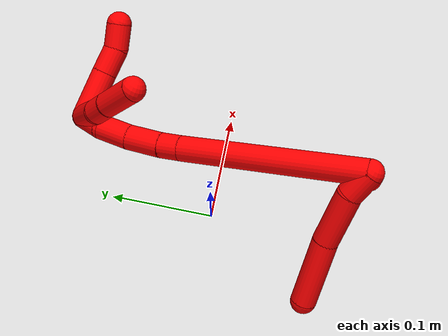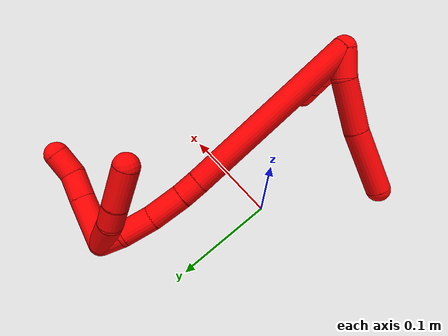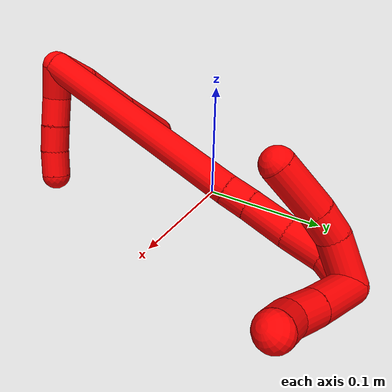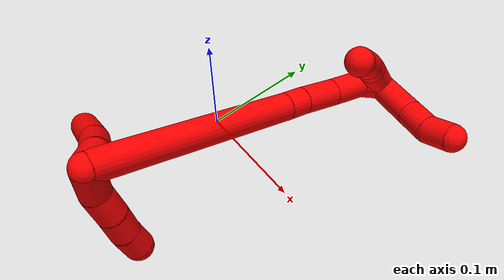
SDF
<sdf version="1.7">
 <world name="default">
  <model name="2">
   <static>0</static>
   <link name="2">
    <collision name="collision-cylinder-e_1_2_8">
     <pose>-0.000307 0.002155 -0.01395 -2.98833 -0.021716 0.280977</pose>
     <geometry><cylinder><radius>0.0125</radius><length>0.028238</length></cylinder></geometry>
     <surface>
      <friction><ode><mu>1.16</mu><mu2>1.16</mu2><slip1>0</slip1><slip2>0</slip2></ode></friction>
      <contact><ode><kp>1e+06</kp><kd>1</kd><max_vel>0</max_vel><min_depth>0.001</min_depth></ode></contact>
     </surface>
    </collision>
    <visual name="visual-cylinder-e_1_2_8">
     <pose>-0.000307 0.002155 -0.01395 -2.98833 -0.021716 0.280977</pose>
     <geometry><cylinder><radius>0.0125</radius><length>0.028238</length></cylinder></geometry>
     <material><ambient>1 0 0 1</ambient></material>
    </visual>
    <collision name="collision-cylinder-e_2_8_9">
     <pose>-0.002518 0.000692 -0.054473 3.00627 -0.070914 -0.964486</pose>
     <geometry><cylinder><radius>0.0125</radius><length>0.053771</length></cylinder></geometry>
     <surface>
      <friction><ode><mu>1.16</mu><mu2>1.16</mu2><slip1>0</slip1><slip2>0</slip2></ode></friction>
      <contact><ode><kp>1e+06</kp><kd>1</kd><max_vel>0</max_vel><min_depth>0.001</min_depth></ode></contact>
     </surface>
    </collision>
    <visual name="visual-cylinder-e_2_8_9">
     <pose>-0.002518 0.000692 -0.054473 3.00627 -0.070914 -0.964486</pose>
     <geometry><cylinder><radius>0.0125</radius><length>0.053771</length></cylinder></geometry>
     <material><ambient>1 0 0 1</ambient></material>
    </visual>
    <collision name="collision-cylinder-e_3_9_6">
     <pose>-0.010005 -0.00986 -0.113856 2.93331 -0.164933 -1.33821</pose>
     <geometry><cylinder><radius>0.0125</radius><length>0.067991</length></cylinder></geometry>
     <surface>
      <friction><ode><mu>1.16</mu><mu2>1.16</mu2><slip1>0</slip1><slip2>0</slip2></ode></friction>
      <contact><ode><kp>1e+06</kp><kd>1</kd><max_vel>0</max_vel><min_depth>0.001</min_depth></ode></contact>
     </surface>
    </collision>
    <visual name="visual-cylinder-e_3_9_6">
     <pose>-0.010005 -0.00986 -0.113856 2.93331 -0.164933 -1.33821</pose>
     <geometry><cylinder><radius>0.0125</radius><length>0.067991</length></cylinder></geometry>
     <material><ambient>1 0 0 1</ambient></material>
    </visual>
    <collision name="collision-cylinder-e_1_2_10">
     <pose>0.009445 -0.00713 -0.008101 2.41985 0.718955 1.56658</pose>
     <geometry><cylinder><radius>0.0125</radius><length>0.028683</length></cylinder></geometry>
     <surface>
      <friction><ode><mu>1.16</mu><mu2>1.16</mu2><slip1>0</slip1><slip2>0</slip2></ode></friction>
      <contact><ode><kp>1e+06</kp><kd>1</kd><max_vel>0</max_vel><min_depth>0.001</min_depth></ode></contact>
     </surface>
    </collision>
    <visual name="visual-cylinder-e_1_2_10">
     <pose>0.009445 -0.00713 -0.008101 2.41985 0.718955 1.56658</pose>
     <geometry><cylinder><radius>0.0125</radius><length>0.028683</length></cylinder></geometry>
     <material><ambient>1 0 0 1</ambient></material>
    </visual>
    <collision name="collision-cylinder-e_2_10_11">
     <pose>0.029631 -0.017987 -0.021894 2.56184 1.00615 2.14819</pose>
     <geometry><cylinder><radius>0.0125</radius><length>0.025427</length></cylinder></geometry>
     <surface>
      <friction><ode><mu>1.16</mu><mu2>1.16</mu2><slip1>0</slip1><slip2>0</slip2></ode></friction>
      <contact><ode><kp>1e+06</kp><kd>1</kd><max_vel>0</max_vel><min_depth>0.001</min_depth></ode></contact>
     </surface>
    </collision>
    <visual name="visual-cylinder-e_2_10_11">
     <pose>0.029631 -0.017987 -0.021894 2.56184 1.00615 2.14819</pose>
     <geometry><cylinder><radius>0.0125</radius><length>0.025427</length></cylinder></geometry>
     <material><ambient>1 0 0 1</ambient></material>
    </visual>
    <collision name="collision-cylinder-e_3_11_12">
     <pose>0.049685 -0.025594 -0.033184 2.53559 0.939364 2.03749</pose>
     <geometry><cylinder><radius>0.0125</radius><length>0.023079</length></cylinder></geometry>
     <surface>
      <friction><ode><mu>1.16</mu><mu2>1.16</mu2><slip1>0</slip1><slip2>0</slip2></ode></friction>
      <contact><ode><kp>1e+06</kp><kd>1</kd><max_vel>0</max_vel><min_depth>0.001</min_depth></ode></contact>
     </surface>
    </collision>
    <visual name="visual-cylinder-e_3_11_12">
     <pose>0.049685 -0.025594 -0.033184 2.53559 0.939364 2.03749</pose>
     <geometry><cylinder><radius>0.0125</radius><length>0.023079</length></cylinder></geometry>
     <material><ambient>1 0 0 1</ambient></material>
    </visual>
    <collision name="collision-cylinder-e_4_12_5">
     <pose>0.068302 -0.032146 -0.044817 2.72469 0.953751 2.36439</pose>
     <geometry><cylinder><radius>0.0125</radius><length>0.022811</length></cylinder></geometry>
     <surface>
      <friction><ode><mu>1.16</mu><mu2>1.16</mu2><slip1>0</slip1><slip2>0</slip2></ode></friction>
      <contact><ode><kp>1e+06</kp><kd>1</kd><max_vel>0</max_vel><min_depth>0.001</min_depth></ode></contact>
     </surface>
    </collision>
    <visual name="visual-cylinder-e_4_12_5">
     <pose>0.068302 -0.032146 -0.044817 2.72469 0.953751 2.36439</pose>
     <geometry><cylinder><radius>0.0125</radius><length>0.022811</length></cylinder></geometry>
     <material><ambient>1 0 0 1</ambient></material>
    </visual>
    <collision name="collision-cylinder-e_1_2_13">
     <pose>0.04603 0.064031 -0.0502 -2.23571 0.51484 -0.991692</pose>
     <geometry><cylinder><radius>0.0125</radius><length>0.186963</length></cylinder></geometry>
     <surface>
      <friction><ode><mu>1.16</mu><mu2>1.16</mu2><slip1>0</slip1><slip2>0</slip2></ode></friction>
      <contact><ode><kp>1e+06</kp><kd>1</kd><max_vel>0</max_vel><min_depth>0.001</min_depth></ode></contact>
     </surface>
    </collision>
    <visual name="visual-cylinder-e_1_2_13">
     <pose>0.04603 0.064031 -0.0502 -2.23571 0.51484 -0.991692</pose>
     <geometry><cylinder><radius>0.0125</radius><length>0.186963</length></cylinder></geometry>
     <material><ambient>1 0 0 1</ambient></material>
    </visual>
    <collision name="collision-cylinder-e_2_13_14">
     <pose>0.097048 0.13575 -0.10568 -2.1725 0.491135 -0.888711</pose>
     <geometry><cylinder><radius>0.0125</radius><length>0.021154</length></cylinder></geometry>
     <surface>
      <friction><ode><mu>1.16</mu><mu2>1.16</mu2><slip1>0</slip1><slip2>0</slip2></ode></friction>
      <contact><ode><kp>1e+06</kp><kd>1</kd><max_vel>0</max_vel><min_depth>0.001</min_depth></ode></contact>
     </surface>
    </collision>
    <visual name="visual-cylinder-e_2_13_14">
     <pose>0.097048 0.13575 -0.10568 -2.1725 0.491135 -0.888711</pose>
     <geometry><cylinder><radius>0.0125</radius><length>0.021154</length></cylinder></geometry>
     <material><ambient>1 0 0 1</ambient></material>
    </visual>
    <collision name="collision-cylinder-e_3_14_15">
     <pose>0.111199 0.156587 -0.118654 -2.10025 0.54149 -0.901556</pose>
     <geometry><cylinder><radius>0.0125</radius><length>0.035553</length></cylinder></geometry>
     <surface>
      <friction><ode><mu>1.16</mu><mu2>1.16</mu2><slip1>0</slip1><slip2>0</slip2></ode></friction>
      <contact><ode><kp>1e+06</kp><kd>1</kd><max_vel>0</max_vel><min_depth>0.001</min_depth></ode></contact>
     </surface>
    </collision>
    <visual name="visual-cylinder-e_3_14_15">
     <pose>0.111199 0.156587 -0.118654 -2.10025 0.54149 -0.901556</pose>
     <geometry><cylinder><radius>0.0125</radius><length>0.035553</length></cylinder></geometry>
     <material><ambient>1 0 0 1</ambient></material>
    </visual>
    <collision name="collision-cylinder-e_4_15_16">
     <pose>0.128164 0.182587 -0.131061 -1.92229 0.518082 -0.725302</pose>
     <geometry><cylinder><radius>0.0125</radius><length>0.031515</length></cylinder></geometry>
     <surface>
      <friction><ode><mu>1.16</mu><mu2>1.16</mu2><slip1>0</slip1><slip2>0</slip2></ode></friction>
      <contact><ode><kp>1e+06</kp><kd>1</kd><max_vel>0</max_vel><min_depth>0.001</min_depth></ode></contact>
     </surface>
    </collision>
    <visual name="visual-cylinder-e_4_15_16">
     <pose>0.128164 0.182587 -0.131061 -1.92229 0.518082 -0.725302</pose>
     <geometry><cylinder><radius>0.0125</radius><length>0.031515</length></cylinder></geometry>
     <material><ambient>1 0 0 1</ambient></material>
    </visual>
    <collision name="collision-cylinder-e_5_16_1">
     <pose>0.145266 0.20294 -0.139126 -1.99112 0.847195 -1.21528</pose>
     <geometry><cylinder><radius>0.0125</radius><length>0.024815</length></cylinder></geometry>
     <surface>
      <friction><ode><mu>1.16</mu><mu2>1.16</mu2><slip1>0</slip1><slip2>0</slip2></ode></friction>
      <contact><ode><kp>1e+06</kp><kd>1</kd><max_vel>0</max_vel><min_depth>0.001</min_depth></ode></contact>
     </surface>
    </collision>
    <visual name="visual-cylinder-e_5_16_1">
     <pose>0.145266 0.20294 -0.139126 -1.99112 0.847195 -1.21528</pose>
     <geometry><cylinder><radius>0.0125</radius><length>0.024815</length></cylinder></geometry>
     <material><ambient>1 0 0 1</ambient></material>
    </visual>
    <collision name="collision-cylinder-e_1_1_17">
     <pose>0.141225 0.209854 -0.129592 0.045435 -0.802179 -0.019271</pose>
     <geometry><cylinder><radius>0.0125</radius><length>0.037113</length></cylinder></geometry>
     <surface>
      <friction><ode><mu>1.16</mu><mu2>1.16</mu2><slip1>0</slip1><slip2>0</slip2></ode></friction>
      <contact><ode><kp>1e+06</kp><kd>1</kd><max_vel>0</max_vel><min_depth>0.001</min_depth></ode></contact>
     </surface>
    </collision>
    <visual name="visual-cylinder-e_1_1_17">
     <pose>0.141225 0.209854 -0.129592 0.045435 -0.802179 -0.019271</pose>
     <geometry><cylinder><radius>0.0125</radius><length>0.037113</length></cylinder></geometry>
     <material><ambient>1 0 0 1</ambient></material>
    </visual>
    <collision name="collision-cylinder-e_2_17_18">
     <pose>0.122386 0.207536 -0.107554 0.187047 -0.533325 -0.051234</pose>
     <geometry><cylinder><radius>0.0125</radius><length>0.021634</length></cylinder></geometry>
     <surface>
      <friction><ode><mu>1.16</mu><mu2>1.16</mu2><slip1>0</slip1><slip2>0</slip2></ode></friction>
      <contact><ode><kp>1e+06</kp><kd>1</kd><max_vel>0</max_vel><min_depth>0.001</min_depth></ode></contact>
     </surface>
    </collision>
    <visual name="visual-cylinder-e_2_17_18">
     <pose>0.122386 0.207536 -0.107554 0.187047 -0.533325 -0.051234</pose>
     <geometry><cylinder><radius>0.0125</radius><length>0.021634</length></cylinder></geometry>
     <material><ambient>1 0 0 1</ambient></material>
    </visual>
    <collision name="collision-cylinder-e_3_18_4">
     <pose>0.107781 0.2011 -0.080501 0.256976 -0.457203 -0.060103</pose>
     <geometry><cylinder><radius>0.0125</radius><length>0.041253</length></cylinder></geometry>
     <surface>
      <friction><ode><mu>1.16</mu><mu2>1.16</mu2><slip1>0</slip1><slip2>0</slip2></ode></friction>
      <contact><ode><kp>1e+06</kp><kd>1</kd><max_vel>0</max_vel><min_depth>0.001</min_depth></ode></contact>
     </surface>
    </collision>
    <visual name="visual-cylinder-e_3_18_4">
     <pose>0.107781 0.2011 -0.080501 0.256976 -0.457203 -0.060103</pose>
     <geometry><cylinder><radius>0.0125</radius><length>0.041253</length></cylinder></geometry>
     <material><ambient>1 0 0 1</ambient></material>
    </visual>
    <collision name="collision-cylinder-e_1_1_19">
     <pose>0.166778 0.208682 -0.121931 0.085332 0.534695 0.023386</pose>
     <geometry><cylinder><radius>0.0125</radius><length>0.047936</length></cylinder></geometry>
     <surface>
      <friction><ode><mu>1.16</mu><mu2>1.16</mu2><slip1>0</slip1><slip2>0</slip2></ode></friction>
      <contact><ode><kp>1e+06</kp><kd>1</kd><max_vel>0</max_vel><min_depth>0.001</min_depth></ode></contact>
     </surface>
    </collision>
    <visual name="visual-cylinder-e_1_1_19">
     <pose>0.166778 0.208682 -0.121931 0.085332 0.534695 0.023386</pose>
     <geometry><cylinder><radius>0.0125</radius><length>0.047936</length></cylinder></geometry>
     <material><ambient>1 0 0 1</ambient></material>
    </visual>
    <collision name="collision-cylinder-e_2_19_20">
     <pose>0.185124 0.205844 -0.089411 0.089984 0.471735 0.021641</pose>
     <geometry><cylinder><radius>0.0125</radius><length>0.02699</length></cylinder></geometry>
     <surface>
      <friction><ode><mu>1.16</mu><mu2>1.16</mu2><slip1>0</slip1><slip2>0</slip2></ode></friction>
      <contact><ode><kp>1e+06</kp><kd>1</kd><max_vel>0</max_vel><min_depth>0.001</min_depth></ode></contact>
     </surface>
    </collision>
    <visual name="visual-cylinder-e_2_19_20">
     <pose>0.185124 0.205844 -0.089411 0.089984 0.471735 0.021641</pose>
     <geometry><cylinder><radius>0.0125</radius><length>0.02699</length></cylinder></geometry>
     <material><ambient>1 0 0 1</ambient></material>
    </visual>
    <collision name="collision-cylinder-e_3_20_3">
     <pose>0.196484 0.207941 -0.066495 -0.282571 0.43007 -0.062111</pose>
     <geometry><cylinder><radius>0.0125</radius><length>0.025074</length></cylinder></geometry>
     <surface>
      <friction><ode><mu>1.16</mu><mu2>1.16</mu2><slip1>0</slip1><slip2>0</slip2></ode></friction>
      <contact><ode><kp>1e+06</kp><kd>1</kd><max_vel>0</max_vel><min_depth>0.001</min_depth></ode></contact>
     </surface>
    </collision>
    <visual name="visual-cylinder-e_3_20_3">
     <pose>0.196484 0.207941 -0.066495 -0.282571 0.43007 -0.062111</pose>
     <geometry><cylinder><radius>0.0125</radius><length>0.025074</length></cylinder></geometry>
     <material><ambient>1 0 0 1</ambient></material>
    </visual>
    <collision name="collision-sphere-3">
     <pose>0.201711 0.211118 -0.055551 0 -0 0</pose>
     <geometry><sphere><radius>0.0125</radius></sphere></geometry>
     <surface>
      <friction><ode><mu>1.16</mu><mu2>1.16</mu2><slip1>0</slip1><slip2>0</slip2></ode></friction>
      <contact><ode><kp>1e+06</kp><kd>1</kd><max_vel>0</max_vel><min_depth>0.001</min_depth></ode></contact>
     </surface>
    </collision>
    <visual name="visual-sphere-3">
     <pose>0.201711 0.211118 -0.055551 0 -0 0</pose>
     <geometry><sphere><radius>0.0125</radius></sphere></geometry>
     <material><ambient>1 0 0 1</ambient></material>
    </visual>
    <collision name="collision-sphere-20">
     <pose>0.191257 0.204764 -0.077438 0 -0 0</pose>
     <geometry><sphere><radius>0.0125</radius></sphere></geometry>
     <surface>
      <friction><ode><mu>1.16</mu><mu2>1.16</mu2><slip1>0</slip1><slip2>0</slip2></ode></friction>
      <contact><ode><kp>1e+06</kp><kd>1</kd><max_vel>0</max_vel><min_depth>0.001</min_depth></ode></contact>
     </surface>
    </collision>
    <visual name="visual-sphere-20">
     <pose>0.191257 0.204764 -0.077438 0 -0 0</pose>
     <geometry><sphere><radius>0.0125</radius></sphere></geometry>
     <material><ambient>1 0 0 1</ambient></material>
    </visual>
    <collision name="collision-sphere-19">
     <pose>0.178992 0.206924 -0.101383 0 -0 0</pose>
     <geometry><sphere><radius>0.0125</radius></sphere></geometry>
     <surface>
      <friction><ode><mu>1.16</mu><mu2>1.16</mu2><slip1>0</slip1><slip2>0</slip2></ode></friction>
      <contact><ode><kp>1e+06</kp><kd>1</kd><max_vel>0</max_vel><min_depth>0.001</min_depth></ode></contact>
     </surface>
    </collision>
    <visual name="visual-sphere-19">
     <pose>0.178992 0.206924 -0.101383 0 -0 0</pose>
     <geometry><sphere><radius>0.0125</radius></sphere></geometry>
     <material><ambient>1 0 0 1</ambient></material>
    </visual>
    <collision name="collision-sphere-11">
     <pose>0.040371 -0.021714 -0.027585 0 -0 0</pose>
     <geometry><sphere><radius>0.0125</radius></sphere></geometry>
     <surface>
      <friction><ode><mu>1.16</mu><mu2>1.16</mu2><slip1>0</slip1><slip2>0</slip2></ode></friction>
      <contact><ode><kp>1e+06</kp><kd>1</kd><max_vel>0</max_vel><min_depth>0.001</min_depth></ode></contact>
     </surface>
    </collision>
    <visual name="visual-sphere-11">
     <pose>0.040371 -0.021714 -0.027585 0 -0 0</pose>
     <geometry><sphere><radius>0.0125</radius></sphere></geometry>
     <material><ambient>1 0 0 1</ambient></material>
    </visual>
    <collision name="collision-sphere-10">
     <pose>0.018891 -0.01426 -0.016202 0 -0 0</pose>
     <geometry><sphere><radius>0.0125</radius></sphere></geometry>
     <surface>
      <friction><ode><mu>1.16</mu><mu2>1.16</mu2><slip1>0</slip1><slip2>0</slip2></ode></friction>
      <contact><ode><kp>1e+06</kp><kd>1</kd><max_vel>0</max_vel><min_depth>0.001</min_depth></ode></contact>
     </surface>
    </collision>
    <visual name="visual-sphere-10">
     <pose>0.018891 -0.01426 -0.016202 0 -0 0</pose>
     <geometry><sphere><radius>0.0125</radius></sphere></geometry>
     <material><ambient>1 0 0 1</ambient></material>
    </visual>
    <collision name="collision-sphere-6">
     <pose>-0.015586 -0.016794 -0.146665 0 -0 0</pose>
     <geometry><sphere><radius>0.0125</radius></sphere></geometry>
     <surface>
      <friction><ode><mu>1.16</mu><mu2>1.16</mu2><slip1>0</slip1><slip2>0</slip2></ode></friction>
      <contact><ode><kp>1e+06</kp><kd>1</kd><max_vel>0</max_vel><min_depth>0.001</min_depth></ode></contact>
     </surface>
    </collision>
    <visual name="visual-sphere-6">
     <pose>-0.015586 -0.016794 -0.146665 0 -0 0</pose>
     <geometry><sphere><radius>0.0125</radius></sphere></geometry>
     <material><ambient>1 0 0 1</ambient></material>
    </visual>
    <collision name="collision-sphere-9">
     <pose>-0.004423 -0.002926 -0.081046 0 -0 0</pose>
     <geometry><sphere><radius>0.0125</radius></sphere></geometry>
     <surface>
      <friction><ode><mu>1.16</mu><mu2>1.16</mu2><slip1>0</slip1><slip2>0</slip2></ode></friction>
      <contact><ode><kp>1e+06</kp><kd>1</kd><max_vel>0</max_vel><min_depth>0.001</min_depth></ode></contact>
     </surface>
    </collision>
    <visual name="visual-sphere-9">
     <pose>-0.004423 -0.002926 -0.081046 0 -0 0</pose>
     <geometry><sphere><radius>0.0125</radius></sphere></geometry>
     <material><ambient>1 0 0 1</ambient></material>
    </visual>
    <collision name="collision-sphere-2">
     <geometry><sphere><radius>0.0125</radius></sphere></geometry>
     <surface>
      <friction><ode><mu>1.16</mu><mu2>1.16</mu2><slip1>0</slip1><slip2>0</slip2></ode></friction>
      <contact><ode><kp>1e+06</kp><kd>1</kd><max_vel>0</max_vel><min_depth>0.001</min_depth></ode></contact>
     </surface>
    </collision>
    <visual name="visual-sphere-2">
     <geometry><sphere><radius>0.0125</radius></sphere></geometry>
     <material><ambient>1 0 0 1</ambient></material>
    </visual>
    <collision name="collision-sphere-8">
     <pose>-0.000613 0.00431 -0.027901 0 -0 0</pose>
     <geometry><sphere><radius>0.0125</radius></sphere></geometry>
     <surface>
      <friction><ode><mu>1.16</mu><mu2>1.16</mu2><slip1>0</slip1><slip2>0</slip2></ode></friction>
      <contact><ode><kp>1e+06</kp><kd>1</kd><max_vel>0</max_vel><min_depth>0.001</min_depth></ode></contact>
     </surface>
    </collision>
    <visual name="visual-sphere-8">
     <pose>-0.000613 0.00431 -0.027901 0 -0 0</pose>
     <geometry><sphere><radius>0.0125</radius></sphere></geometry>
     <material><ambient>1 0 0 1</ambient></material>
    </visual>
    <collision name="collision-sphere-12">
     <pose>0.058999 -0.029474 -0.038783 0 -0 0</pose>
     <geometry><sphere><radius>0.0125</radius></sphere></geometry>
     <surface>
      <friction><ode><mu>1.16</mu><mu2>1.16</mu2><slip1>0</slip1><slip2>0</slip2></ode></friction>
      <contact><ode><kp>1e+06</kp><kd>1</kd><max_vel>0</max_vel><min_depth>0.001</min_depth></ode></contact>
     </surface>
    </collision>
    <visual name="visual-sphere-12">
     <pose>0.058999 -0.029474 -0.038783 0 -0 0</pose>
     <geometry><sphere><radius>0.0125</radius></sphere></geometry>
     <material><ambient>1 0 0 1</ambient></material>
    </visual>
    <collision name="collision-sphere-5">
     <pose>0.077604 -0.034819 -0.050851 0 -0 0</pose>
     <geometry><sphere><radius>0.0125</radius></sphere></geometry>
     <surface>
      <friction><ode><mu>1.16</mu><mu2>1.16</mu2><slip1>0</slip1><slip2>0</slip2></ode></friction>
      <contact><ode><kp>1e+06</kp><kd>1</kd><max_vel>0</max_vel><min_depth>0.001</min_depth></ode></contact>
     </surface>
    </collision>
    <visual name="visual-sphere-5">
     <pose>0.077604 -0.034819 -0.050851 0 -0 0</pose>
     <geometry><sphere><radius>0.0125</radius></sphere></geometry>
     <material><ambient>1 0 0 1</ambient></material>
    </visual>
    <collision name="collision-sphere-13">
     <pose>0.09206 0.128062 -0.100401 0 -0 0</pose>
     <geometry><sphere><radius>0.0125</radius></sphere></geometry>
     <surface>
      <friction><ode><mu>1.16</mu><mu2>1.16</mu2><slip1>0</slip1><slip2>0</slip2></ode></friction>
      <contact><ode><kp>1e+06</kp><kd>1</kd><max_vel>0</max_vel><min_depth>0.001</min_depth></ode></contact>
     </surface>
    </collision>
    <visual name="visual-sphere-13">
     <pose>0.09206 0.128062 -0.100401 0 -0 0</pose>
     <geometry><sphere><radius>0.0125</radius></sphere></geometry>
     <material><ambient>1 0 0 1</ambient></material>
    </visual>
    <collision name="collision-sphere-14">
     <pose>0.102036 0.143439 -0.11096 0 -0 0</pose>
     <geometry><sphere><radius>0.0125</radius></sphere></geometry>
     <surface>
      <friction><ode><mu>1.16</mu><mu2>1.16</mu2><slip1>0</slip1><slip2>0</slip2></ode></friction>
      <contact><ode><kp>1e+06</kp><kd>1</kd><max_vel>0</max_vel><min_depth>0.001</min_depth></ode></contact>
     </surface>
    </collision>
    <visual name="visual-sphere-14">
     <pose>0.102036 0.143439 -0.11096 0 -0 0</pose>
     <geometry><sphere><radius>0.0125</radius></sphere></geometry>
     <material><ambient>1 0 0 1</ambient></material>
    </visual>
    <collision name="collision-sphere-15">
     <pose>0.120361 0.169735 -0.126347 0 -0 0</pose>
     <geometry><sphere><radius>0.0125</radius></sphere></geometry>
     <surface>
      <friction><ode><mu>1.16</mu><mu2>1.16</mu2><slip1>0</slip1><slip2>0</slip2></ode></friction>
      <contact><ode><kp>1e+06</kp><kd>1</kd><max_vel>0</max_vel><min_depth>0.001</min_depth></ode></contact>
     </surface>
    </collision>
    <visual name="visual-sphere-15">
     <pose>0.120361 0.169735 -0.126347 0 -0 0</pose>
     <geometry><sphere><radius>0.0125</radius></sphere></geometry>
     <material><ambient>1 0 0 1</ambient></material>
    </visual>
    <collision name="collision-sphere-16">
     <pose>0.135968 0.19544 -0.135774 0 -0 0</pose>
     <geometry><sphere><radius>0.0125</radius></sphere></geometry>
     <surface>
      <friction><ode><mu>1.16</mu><mu2>1.16</mu2><slip1>0</slip1><slip2>0</slip2></ode></friction>
      <contact><ode><kp>1e+06</kp><kd>1</kd><max_vel>0</max_vel><min_depth>0.001</min_depth></ode></contact>
     </surface>
    </collision>
    <visual name="visual-sphere-16">
     <pose>0.135968 0.19544 -0.135774 0 -0 0</pose>
     <geometry><sphere><radius>0.0125</radius></sphere></geometry>
     <material><ambient>1 0 0 1</ambient></material>
    </visual>
    <collision name="collision-sphere-1">
     <pose>0.154565 0.21044 -0.142478 0 -0 0</pose>
     <geometry><sphere><radius>0.0125</radius></sphere></geometry>
     <surface>
      <friction><ode><mu>1.16</mu><mu2>1.16</mu2><slip1>0</slip1><slip2>0</slip2></ode></friction>
      <contact><ode><kp>1e+06</kp><kd>1</kd><max_vel>0</max_vel><min_depth>0.001</min_depth></ode></contact>
     </surface>
    </collision>
    <visual name="visual-sphere-1">
     <pose>0.154565 0.21044 -0.142478 0 -0 0</pose>
     <geometry><sphere><radius>0.0125</radius></sphere></geometry>
     <material><ambient>1 0 0 1</ambient></material>
    </visual>
    <collision name="collision-sphere-18">
     <pose>0.116887 0.205804 -0.098402 0 -0 0</pose>
     <geometry><sphere><radius>0.0125</radius></sphere></geometry>
     <surface>
      <friction><ode><mu>1.16</mu><mu2>1.16</mu2><slip1>0</slip1><slip2>0</slip2></ode></friction>
      <contact><ode><kp>1e+06</kp><kd>1</kd><max_vel>0</max_vel><min_depth>0.001</min_depth></ode></contact>
     </surface>
    </collision>
    <visual name="visual-sphere-18">
     <pose>0.116887 0.205804 -0.098402 0 -0 0</pose>
     <geometry><sphere><radius>0.0125</radius></sphere></geometry>
     <material><ambient>1 0 0 1</ambient></material>
    </visual>
    <collision name="collision-sphere-17">
     <pose>0.127885 0.209268 -0.116706 0 -0 0</pose>
     <geometry><sphere><radius>0.0125</radius></sphere></geometry>
     <surface>
      <friction><ode><mu>1.16</mu><mu2>1.16</mu2><slip1>0</slip1><slip2>0</slip2></ode></friction>
      <contact><ode><kp>1e+06</kp><kd>1</kd><max_vel>0</max_vel><min_depth>0.001</min_depth></ode></contact>
     </surface>
    </collision>
    <visual name="visual-sphere-17">
     <pose>0.127885 0.209268 -0.116706 0 -0 0</pose>
     <geometry><sphere><radius>0.0125</radius></sphere></geometry>
     <material><ambient>1 0 0 1</ambient></material>
    </visual>
    <collision name="collision-sphere-4">
     <pose>0.098676 0.196396 -0.062601 0 -0 0</pose>
     <geometry><sphere><radius>0.0125</radius></sphere></geometry>
     <surface>
      <friction><ode><mu>1.16</mu><mu2>1.16</mu2><slip1>0</slip1><slip2>0</slip2></ode></friction>
      <contact><ode><kp>1e+06</kp><kd>1</kd><max_vel>0</max_vel><min_depth>0.001</min_depth></ode></contact>
     </surface>
    </collision>
    <visual name="visual-sphere-4">
     <pose>0.098676 0.196396 -0.062601 0 -0 0</pose>
     <geometry><sphere><radius>0.0125</radius></sphere></geometry>
     <material><ambient>1 0 0 1</ambient></material>
    </visual>
    <inertial>
     <pose>0.073885 0.093319 -0.076595 0 -0 0</pose>
     <mass>0.75</mass>
     <inertia>
      <ixx>-0.000117</ixx>
      <ixy>0</ixy>
      <ixz>0</ixz>
      <iyy>-0.000419</iyy>
      <iyz>0</iyz>
      <izz>-0.000667</izz>
     </inertia>
    </inertial>
   </link>
   <pose>0.043481 -0.134478 0.107398 0.580857 0.645648 0.340193</pose>
  </model>
 </world>
</sdf>
